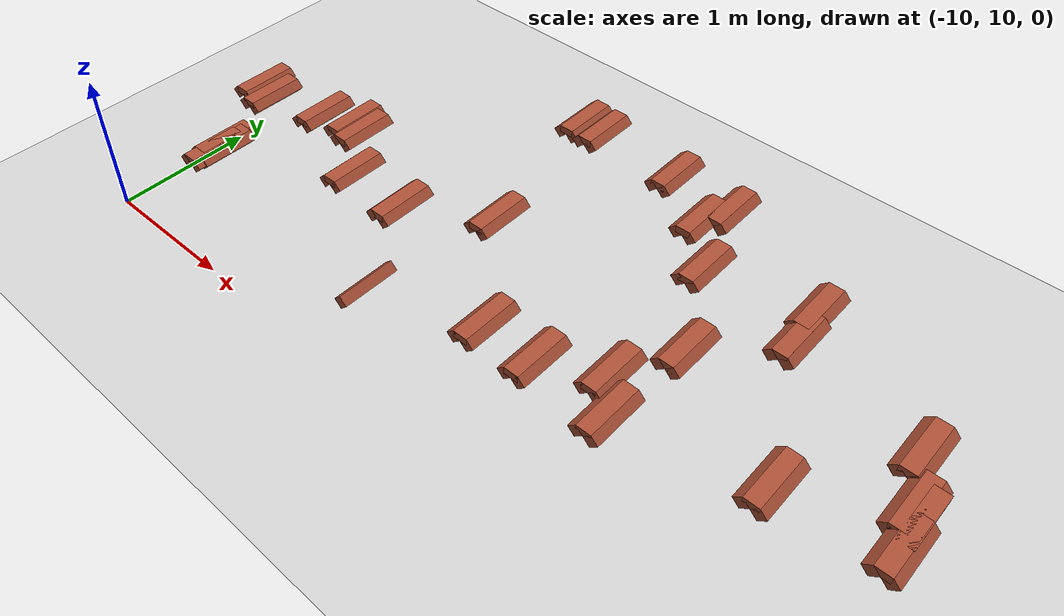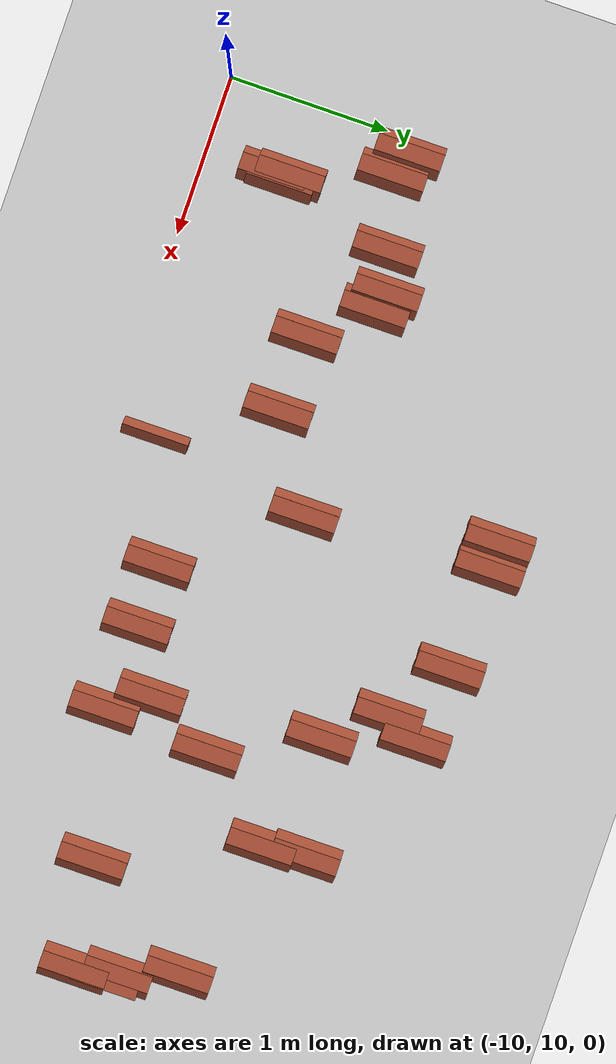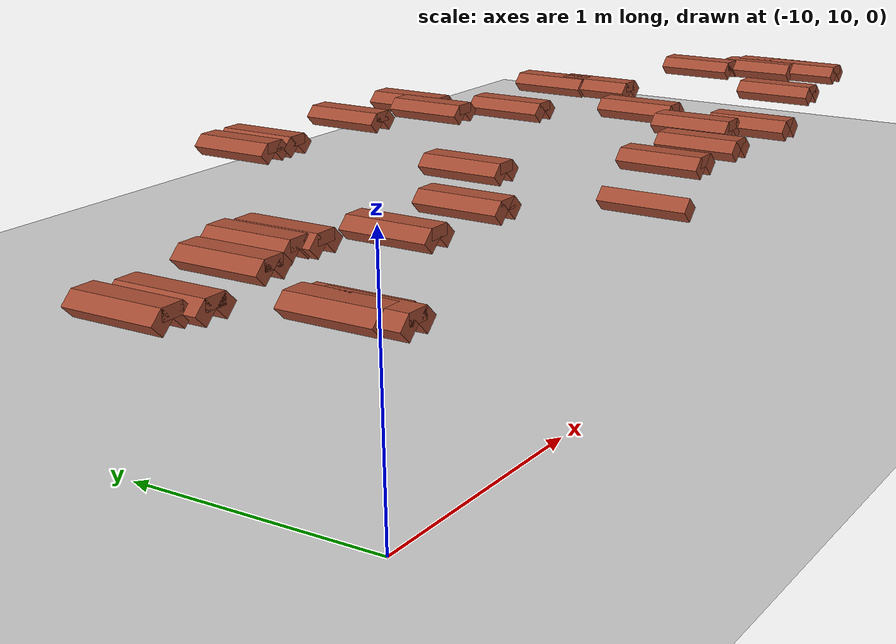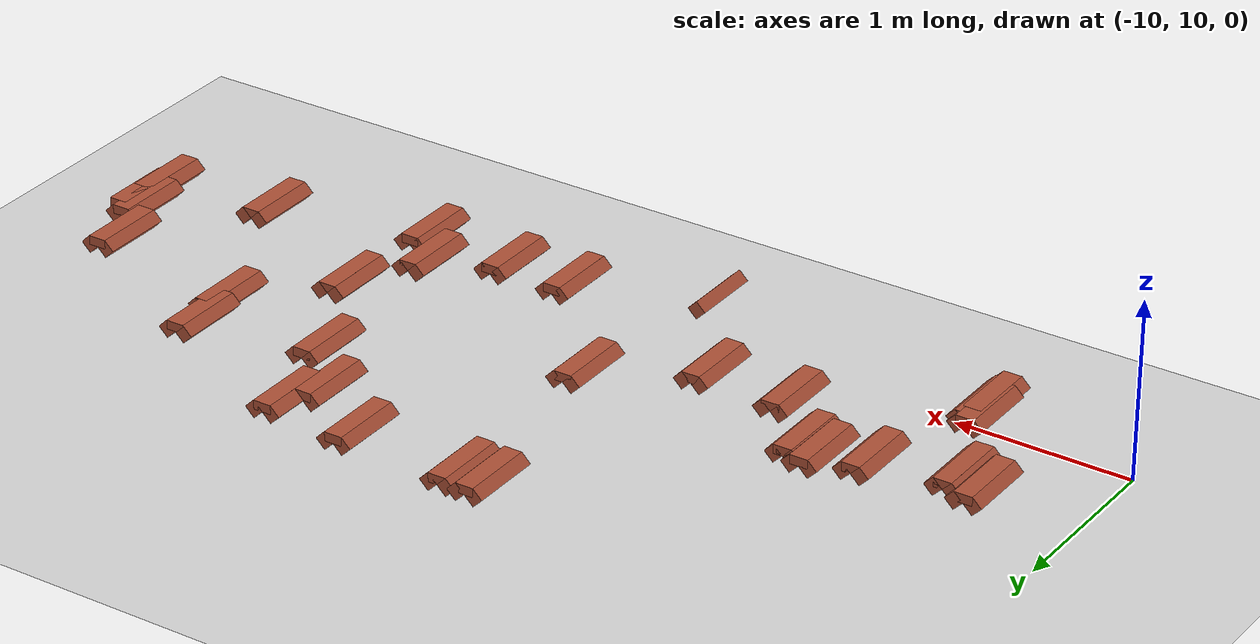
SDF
<sdf version="1.7">
 <world name="default">
  <model name="ground_plane">
   <static>1</static>
   <link name="link">
    <collision name="collision">
     <geometry><plane><normal>0 0 1</normal><size>100 100</size></plane></geometry>
     <surface><friction><ode><mu>100</mu><mu2>50</mu2></ode></friction></surface>
    </collision>
    <visual name="visual">
     <cast_shadows>0</cast_shadows>
     <geometry><plane><normal>0 0 1</normal><size>100 100</size></plane></geometry>
     <material>
      <script><uri>file://media/materials/scripts/gazebo.material</uri><name>Gazebo/Grey</name></script>
     </material>
    </visual>
   </link>
  </model>
  <model name="tumsek">
   <static>1</static>
   <pose>-5.17447 11.4027 0.5 0 -0 0</pose>
   <link name="tumsek_main_0">
    <pose>0.442808 -0.537221 0 0 -0 0</pose>
    <collision name="tumsek_Collision">
     <geometry><box><size>0.1 0.4 0.05</size></box></geometry>
     <pose>0 0 0.025 0 -0 0</pose>
    </collision>
    <visual name="tumsek_Visual">
     <pose>0 0 0.025 0 -0 0</pose>
     <geometry><box><size>0.1 0.4 0.05</size></box></geometry>
     <material>
      <script><uri>file://media/materials/scripts/gazebo.material</uri><name>Gazebo/Bricks</name></script>
      <ambient>1 1 1 1</ambient>
     </material>
     <meta><layer>0</layer></meta>
    </visual>
   </link>
   <link name="tumsek_front_0">
    <pose>0.492808 -0.537221 0 0 0.785 0</pose>
    <collision name="tumsek_Collision"><geometry><box><size>0.0707 0.4 0.0707</size></box></geometry></collision>
    <visual name="tumsek_Visual">
     <geometry><box><size>0.0707 0.4 0.0707</size></box></geometry>
     <material>
      <script><uri>file://media/materials/scripts/gazebo.material</uri><name>Gazebo/Bricks</name></script>
      <ambient>1 1 1 1</ambient>
     </material>
    </visual>
   </link>
   <link name="tumsek_back_0">
    <pose>0.392808 -0.537221 0 0 0.785 0</pose>
    <collision name="tumsek_Collision"><geometry><box><size>0.0707 0.4 0.0707</size></box></geometry></collision>
    <visual name="tumsek_Visual">
     <geometry><box><size>0.0707 0.4 0.0707</size></box></geometry>
     <material>
      <script><uri>file://media/materials/scripts/gazebo.material</uri><name>Gazebo/Bricks</name></script>
      <ambient>1 1 1 1</ambient>
     </material>
    </visual>
   </link>
   <link name="tumsek_main_1">
    <pose>-0.18536 -0.64129 0 0 -0 0</pose>
    <collision name="tumsek_Collision">
     <geometry><box><size>0.1 0.4 0.05</size></box></geometry>
     <pose>0 0 0.025 0 -0 0</pose>
    </collision>
    <visual name="tumsek_Visual">
     <pose>0 0 0.025 0 -0 0</pose>
     <geometry><box><size>0.1 0.4 0.05</size></box></geometry>
     <material>
      <script><uri>file://media/materials/scripts/gazebo.material</uri><name>Gazebo/Bricks</name></script>
      <ambient>1 1 1 1</ambient>
     </material>
     <meta><layer>0</layer></meta>
    </visual>
   </link>
   <link name="tumsek_front_1">
    <pose>-0.13536 -0.64129 0 0 0.785 0</pose>
    <collision name="tumsek_Collision"><geometry><box><size>0.0707 0.4 0.0707</size></box></geometry></collision>
    <visual name="tumsek_Visual">
     <geometry><box><size>0.0707 0.4 0.0707</size></box></geometry>
     <material>
      <script><uri>file://media/materials/scripts/gazebo.material</uri><name>Gazebo/Bricks</name></script>
      <ambient>1 1 1 1</ambient>
     </material>
    </visual>
   </link>
   <link name="tumsek_back_1">
    <pose>-0.23536 -0.64129 0 0 0.785 0</pose>
    <collision name="tumsek_Collision"><geometry><box><size>0.0707 0.4 0.0707</size></box></geometry></collision>
    <visual name="tumsek_Visual">
     <geometry><box><size>0.0707 0.4 0.0707</size></box></geometry>
     <material>
      <script><uri>file://media/materials/scripts/gazebo.material</uri><name>Gazebo/Bricks</name></script>
      <ambient>1 1 1 1</ambient>
     </material>
    </visual>
   </link>
   <link name="tumsek_main_2">
    <pose>-0.578517 0.253678 0 0 -0 0</pose>
    <collision name="tumsek_Collision">
     <geometry><box><size>0.1 0.4 0.05</size></box></geometry>
     <pose>0 0 0.025 0 -0 0</pose>
    </collision>
    <visual name="tumsek_Visual">
     <pose>0 0 0.025 0 -0 0</pose>
     <geometry><box><size>0.1 0.4 0.05</size></box></geometry>
     <material>
      <script><uri>file://media/materials/scripts/gazebo.material</uri><name>Gazebo/Bricks</name></script>
      <ambient>1 1 1 1</ambient>
     </material>
     <meta><layer>0</layer></meta>
    </visual>
   </link>
   <link name="tumsek_front_2">
    <pose>-0.528517 0.253678 0 0 0.785 0</pose>
    <collision name="tumsek_Collision"><geometry><box><size>0.0707 0.4 0.0707</size></box></geometry></collision>
    <visual name="tumsek_Visual">
     <geometry><box><size>0.0707 0.4 0.0707</size></box></geometry>
     <material>
      <script><uri>file://media/materials/scripts/gazebo.material</uri><name>Gazebo/Bricks</name></script>
      <ambient>1 1 1 1</ambient>
     </material>
    </visual>
   </link>
   <link name="tumsek_back_2">
    <pose>-0.628517 0.253678 0 0 0.785 0</pose>
    <collision name="tumsek_Collision"><geometry><box><size>0.0707 0.4 0.0707</size></box></geometry></collision>
    <visual name="tumsek_Visual">
     <geometry><box><size>0.0707 0.4 0.0707</size></box></geometry>
     <material>
      <script><uri>file://media/materials/scripts/gazebo.material</uri><name>Gazebo/Bricks</name></script>
      <ambient>1 1 1 1</ambient>
     </material>
    </visual>
   </link>
   <link name="tumsek_main_3">
    <pose>-2.98653 -0.469523 0 0 -0 0</pose>
    <collision name="tumsek_Collision">
     <geometry><box><size>0.1 0.4 0.05</size></box></geometry>
     <pose>0 0 0.025 0 -0 0</pose>
    </collision>
    <visual name="tumsek_Visual">
     <pose>0 0 0.025 0 -0 0</pose>
     <geometry><box><size>0.1 0.4 0.05</size></box></geometry>
     <material>
      <script><uri>file://media/materials/scripts/gazebo.material</uri><name>Gazebo/Bricks</name></script>
      <ambient>1 1 1 1</ambient>
     </material>
     <meta><layer>0</layer></meta>
    </visual>
   </link>
   <link name="tumsek_front_3">
    <pose>-2.93654 -0.469523 0 0 0.785 0</pose>
    <collision name="tumsek_Collision"><geometry><box><size>0.0707 0.4 0.0707</size></box></geometry></collision>
    <visual name="tumsek_Visual">
     <geometry><box><size>0.0707 0.4 0.0707</size></box></geometry>
     <material>
      <script><uri>file://media/materials/scripts/gazebo.material</uri><name>Gazebo/Bricks</name></script>
      <ambient>1 1 1 1</ambient>
     </material>
    </visual>
   </link>
   <link name="tumsek_back_3">
    <pose>-3.03654 -0.469523 0 0 0.785 0</pose>
    <collision name="tumsek_Collision"><geometry><box><size>0.0707 0.4 0.0707</size></box></geometry></collision>
    <visual name="tumsek_Visual">
     <geometry><box><size>0.0707 0.4 0.0707</size></box></geometry>
     <material>
      <script><uri>file://media/materials/scripts/gazebo.material</uri><name>Gazebo/Bricks</name></script>
      <ambient>1 1 1 1</ambient>
     </material>
    </visual>
   </link>
   <link name="tumsek_main_4">
    <pose>-0.987853 -0.219527 0 0 -0 0</pose>
    <collision name="tumsek_Collision">
     <geometry><box><size>0.1 0.4 0.05</size></box></geometry>
     <pose>0 0 0.025 0 -0 0</pose>
    </collision>
    <visual name="tumsek_Visual">
     <pose>0 0 0.025 0 -0 0</pose>
     <geometry><box><size>0.1 0.4 0.05</size></box></geometry>
     <material>
      <script><uri>file://media/materials/scripts/gazebo.material</uri><name>Gazebo/Bricks</name></script>
      <ambient>1 1 1 1</ambient>
     </material>
     <meta><layer>0</layer></meta>
    </visual>
   </link>
   <link name="tumsek_front_4">
    <pose>-0.937853 -0.219527 0 0 0.785 0</pose>
    <collision name="tumsek_Collision"><geometry><box><size>0.0707 0.4 0.0707</size></box></geometry></collision>
    <visual name="tumsek_Visual">
     <geometry><box><size>0.0707 0.4 0.0707</size></box></geometry>
     <material>
      <script><uri>file://media/materials/scripts/gazebo.material</uri><name>Gazebo/Bricks</name></script>
      <ambient>1 1 1 1</ambient>
     </material>
    </visual>
   </link>
   <link name="tumsek_back_4">
    <pose>-1.03785 -0.219527 0 0 0.785 0</pose>
    <collision name="tumsek_Collision"><geometry><box><size>0.0707 0.4 0.0707</size></box></geometry></collision>
    <visual name="tumsek_Visual">
     <geometry><box><size>0.0707 0.4 0.0707</size></box></geometry>
     <material>
      <script><uri>file://media/materials/scripts/gazebo.material</uri><name>Gazebo/Bricks</name></script>
      <ambient>1 1 1 1</ambient>
     </material>
    </visual>
   </link>
   <link name="tumsek_main_9">
    <pose>-2.67469 0.983993 0 0 -0 0</pose>
    <collision name="tumsek_Collision">
     <geometry><box><size>0.1 0.4 0.05</size></box></geometry>
     <pose>0 0 0.025 0 -0 0</pose>
    </collision>
    <visual name="tumsek_Visual">
     <pose>0 0 0.025 0 -0 0</pose>
     <geometry><box><size>0.1 0.4 0.05</size></box></geometry>
     <material>
      <script><uri>file://media/materials/scripts/gazebo.material</uri><name>Gazebo/Bricks</name></script>
      <ambient>1 1 1 1</ambient>
     </material>
     <meta><layer>0</layer></meta>
    </visual>
   </link>
   <link name="tumsek_front_9">
    <pose>-2.62469 0.983993 0 0 0.785 0</pose>
    <collision name="tumsek_Collision"><geometry><box><size>0.0707 0.4 0.0707</size></box></geometry></collision>
    <visual name="tumsek_Visual">
     <geometry><box><size>0.0707 0.4 0.0707</size></box></geometry>
     <material>
      <script><uri>file://media/materials/scripts/gazebo.material</uri><name>Gazebo/Bricks</name></script>
      <ambient>1 1 1 1</ambient>
     </material>
    </visual>
   </link>
   <link name="tumsek_back_9">
    <pose>-2.72469 0.983993 0 0 0.785 0</pose>
    <collision name="tumsek_Collision"><geometry><box><size>0.0707 0.4 0.0707</size></box></geometry></collision>
    <visual name="tumsek_Visual">
     <geometry><box><size>0.0707 0.4 0.0707</size></box></geometry>
     <material>
      <script><uri>file://media/materials/scripts/gazebo.material</uri><name>Gazebo/Bricks</name></script>
      <ambient>1 1 1 1</ambient>
     </material>
    </visual>
   </link>
   <link name="tumsek_main_12">
    <pose>-2.51657 0.980659 0 0 -0 0</pose>
    <collision name="tumsek_Collision">
     <geometry><box><size>0.1 0.4 0.05</size></box></geometry>
     <pose>0 0 0.025 0 -0 0</pose>
    </collision>
    <visual name="tumsek_Visual">
     <pose>0 0 0.025 0 -0 0</pose>
     <geometry><box><size>0.1 0.4 0.05</size></box></geometry>
     <material>
      <script><uri>file://media/materials/scripts/gazebo.material</uri><name>Gazebo/Bricks</name></script>
      <ambient>1 1 1 1</ambient>
     </material>
     <meta><layer>0</layer></meta>
    </visual>
   </link>
   <link name="tumsek_front_12">
    <pose>-2.46657 0.980659 0 0 0.785 0</pose>
    <collision name="tumsek_Collision"><geometry><box><size>0.0707 0.4 0.0707</size></box></geometry></collision>
    <visual name="tumsek_Visual">
     <geometry><box><size>0.0707 0.4 0.0707</size></box></geometry>
     <material>
      <script><uri>file://media/materials/scripts/gazebo.material</uri><name>Gazebo/Bricks</name></script>
      <ambient>1 1 1 1</ambient>
     </material>
    </visual>
   </link>
   <link name="tumsek_back_12">
    <pose>-2.56657 0.980659 0 0 0.785 0</pose>
    <collision name="tumsek_Collision"><geometry><box><size>0.0707 0.4 0.0707</size></box></geometry></collision>
    <visual name="tumsek_Visual">
     <geometry><box><size>0.0707 0.4 0.0707</size></box></geometry>
     <material>
      <script><uri>file://media/materials/scripts/gazebo.material</uri><name>Gazebo/Bricks</name></script>
      <ambient>1 1 1 1</ambient>
     </material>
    </visual>
   </link>
   <link name="tumsek_main_13">
    <pose>-3.82893 -0.09566 0 0 -0 0</pose>
    <collision name="tumsek_Collision">
     <geometry><box><size>0.1 0.4 0.05</size></box></geometry>
     <pose>0 0 0.025 0 -0 0</pose>
    </collision>
    <visual name="tumsek_Visual">
     <pose>0 0 0.025 0 -0 0</pose>
     <geometry><box><size>0.1 0.4 0.05</size></box></geometry>
     <material>
      <script><uri>file://media/materials/scripts/gazebo.material</uri><name>Gazebo/Bricks</name></script>
      <ambient>1 1 1 1</ambient>
     </material>
     <meta><layer>0</layer></meta>
    </visual>
   </link>
   <link name="tumsek_front_13">
    <pose>-3.77893 -0.09566 0 0 0.785 0</pose>
    <collision name="tumsek_Collision"><geometry><box><size>0.0707 0.4 0.0707</size></box></geometry></collision>
    <visual name="tumsek_Visual">
     <geometry><box><size>0.0707 0.4 0.0707</size></box></geometry>
     <material>
      <script><uri>file://media/materials/scripts/gazebo.material</uri><name>Gazebo/Bricks</name></script>
      <ambient>1 1 1 1</ambient>
     </material>
    </visual>
   </link>
   <link name="tumsek_back_13">
    <pose>-3.87893 -0.09566 0 0 0.785 0</pose>
    <collision name="tumsek_Collision"><geometry><box><size>0.0707 0.4 0.0707</size></box></geometry></collision>
    <visual name="tumsek_Visual">
     <geometry><box><size>0.0707 0.4 0.0707</size></box></geometry>
     <material>
      <script><uri>file://media/materials/scripts/gazebo.material</uri><name>Gazebo/Bricks</name></script>
      <ambient>1 1 1 1</ambient>
     </material>
    </visual>
   </link>
   <link name="tumsek_main_16">
    <pose>-3.71648 -0.131651 0 0 -0 0</pose>
    <collision name="tumsek_Collision">
     <geometry><box><size>0.1 0.4 0.05</size></box></geometry>
     <pose>0 0 0.025 0 -0 0</pose>
    </collision>
    <visual name="tumsek_Visual">
     <pose>0 0 0.025 0 -0 0</pose>
     <geometry><box><size>0.1 0.4 0.05</size></box></geometry>
     <material>
      <script><uri>file://media/materials/scripts/gazebo.material</uri><name>Gazebo/Bricks</name></script>
      <ambient>1 1 1 1</ambient>
     </material>
     <meta><layer>0</layer></meta>
    </visual>
   </link>
   <link name="tumsek_front_16">
    <pose>-3.66648 -0.131651 0 0 0.785 0</pose>
    <collision name="tumsek_Collision"><geometry><box><size>0.0707 0.4 0.0707</size></box></geometry></collision>
    <visual name="tumsek_Visual">
     <geometry><box><size>0.0707 0.4 0.0707</size></box></geometry>
     <material>
      <script><uri>file://media/materials/scripts/gazebo.material</uri><name>Gazebo/Bricks</name></script>
      <ambient>1 1 1 1</ambient>
     </material>
    </visual>
   </link>
   <link name="tumsek_back_16">
    <pose>-3.76648 -0.131651 0 0 0.785 0</pose>
    <collision name="tumsek_Collision"><geometry><box><size>0.0707 0.4 0.0707</size></box></geometry></collision>
    <visual name="tumsek_Visual">
     <geometry><box><size>0.0707 0.4 0.0707</size></box></geometry>
     <material>
      <script><uri>file://media/materials/scripts/gazebo.material</uri><name>Gazebo/Bricks</name></script>
      <ambient>1 1 1 1</ambient>
     </material>
    </visual>
   </link>
   <link name="tumsek_main_18">
    <pose>-1.54985 -0.834055 0 0 -0 0</pose>
    <collision name="tumsek_Collision">
     <geometry><box><size>0.1 0.4 0.05</size></box></geometry>
     <pose>0 0 0.025 0 -0 0</pose>
    </collision>
    <visual name="tumsek_Visual">
     <pose>0 0 0.025 0 -0 0</pose>
     <geometry><box><size>0.1 0.4 0.05</size></box></geometry>
     <material>
      <script><uri>file://media/materials/scripts/gazebo.material</uri><name>Gazebo/Bricks</name></script>
      <ambient>1 1 1 1</ambient>
     </material>
     <meta><layer>0</layer></meta>
    </visual>
   </link>
   <link name="tumsek_front_18">
    <pose>-1.49985 -0.834055 0 0 0.785 0</pose>
    <collision name="tumsek_Collision"><geometry><box><size>0.0707 0.4 0.0707</size></box></geometry></collision>
    <visual name="tumsek_Visual">
     <geometry><box><size>0.0707 0.4 0.0707</size></box></geometry>
     <material>
      <script><uri>file://media/materials/scripts/gazebo.material</uri><name>Gazebo/Bricks</name></script>
      <ambient>1 1 1 1</ambient>
     </material>
    </visual>
   </link>
   <link name="tumsek_back_18">
    <pose>-1.59985 -0.834055 0 0 0.785 0</pose>
    <collision name="tumsek_Collision"><geometry><box><size>0.0707 0.4 0.0707</size></box></geometry></collision>
    <visual name="tumsek_Visual">
     <geometry><box><size>0.0707 0.4 0.0707</size></box></geometry>
     <material>
      <script><uri>file://media/materials/scripts/gazebo.material</uri><name>Gazebo/Bricks</name></script>
      <ambient>1 1 1 1</ambient>
     </material>
    </visual>
   </link>
   <link name="tumsek_main_20">
    <pose>-4.06409 -0.173776 0 0 -0 0</pose>
    <collision name="tumsek_Collision">
     <geometry><box><size>0.1 0.4 0.05</size></box></geometry>
     <pose>0 0 0.025 0 -0 0</pose>
    </collision>
    <visual name="tumsek_Visual">
     <pose>0 0 0.025 0 -0 0</pose>
     <geometry><box><size>0.1 0.4 0.05</size></box></geometry>
     <material>
      <script><uri>file://media/materials/scripts/gazebo.material</uri><name>Gazebo/Bricks</name></script>
      <ambient>1 1 1 1</ambient>
     </material>
     <meta><layer>0</layer></meta>
    </visual>
   </link>
   <link name="tumsek_front_20">
    <pose>-4.01409 -0.173776 0 0 0.785 0</pose>
    <collision name="tumsek_Collision"><geometry><box><size>0.0707 0.4 0.0707</size></box></geometry></collision>
    <visual name="tumsek_Visual">
     <geometry><box><size>0.0707 0.4 0.0707</size></box></geometry>
     <material>
      <script><uri>file://media/materials/scripts/gazebo.material</uri><name>Gazebo/Bricks</name></script>
      <ambient>1 1 1 1</ambient>
     </material>
    </visual>
   </link>
   <link name="tumsek_back_20">
    <pose>-4.11409 -0.173776 0 0 0.785 0</pose>
    <collision name="tumsek_Collision"><geometry><box><size>0.0707 0.4 0.0707</size></box></geometry></collision>
    <visual name="tumsek_Visual">
     <geometry><box><size>0.0707 0.4 0.0707</size></box></geometry>
     <material>
      <script><uri>file://media/materials/scripts/gazebo.material</uri><name>Gazebo/Bricks</name></script>
      <ambient>1 1 1 1</ambient>
     </material>
    </visual>
   </link>
   <link name="tumsek_main_21">
    <pose>0.274118 0.040193 0 0 -0 0</pose>
    <collision name="tumsek_Collision">
     <geometry><box><size>0.1 0.4 0.05</size></box></geometry>
     <pose>0 0 0.025 0 -0 0</pose>
    </collision>
    <visual name="tumsek_Visual">
     <pose>0 0 0.025 0 -0 0</pose>
     <geometry><box><size>0.1 0.4 0.05</size></box></geometry>
     <material>
      <script><uri>file://media/materials/scripts/gazebo.material</uri><name>Gazebo/Bricks</name></script>
      <ambient>1 1 1 1</ambient>
     </material>
     <meta><layer>0</layer></meta>
    </visual>
   </link>
   <link name="tumsek_front_21">
    <pose>0.324118 0.040193 0 0 0.785 0</pose>
    <collision name="tumsek_Collision"><geometry><box><size>0.0707 0.4 0.0707</size></box></geometry></collision>
    <visual name="tumsek_Visual">
     <geometry><box><size>0.0707 0.4 0.0707</size></box></geometry>
     <material>
      <script><uri>file://media/materials/scripts/gazebo.material</uri><name>Gazebo/Bricks</name></script>
      <ambient>1 1 1 1</ambient>
     </material>
    </visual>
   </link>
   <link name="tumsek_back_21">
    <pose>0.224118 0.040193 0 0 0.785 0</pose>
    <collision name="tumsek_Collision"><geometry><box><size>0.0707 0.4 0.0707</size></box></geometry></collision>
    <visual name="tumsek_Visual">
     <geometry><box><size>0.0707 0.4 0.0707</size></box></geometry>
     <material>
      <script><uri>file://media/materials/scripts/gazebo.material</uri><name>Gazebo/Bricks</name></script>
      <ambient>1 1 1 1</ambient>
     </material>
    </visual>
   </link>
   <link name="tumsek_main_28">
    <pose>-1.89296 0.949633 0 0 -0 0</pose>
    <collision name="tumsek_Collision">
     <geometry><box><size>0.1 0.4 0.05</size></box></geometry>
     <pose>0 0 0.025 0 -0 0</pose>
    </collision>
    <visual name="tumsek_Visual">
     <pose>0 0 0.025 0 -0 0</pose>
     <geometry><box><size>0.1 0.4 0.05</size></box></geometry>
     <material>
      <script><uri>file://media/materials/scripts/gazebo.material</uri><name>Gazebo/Bricks</name></script>
      <ambient>1 1 1 1</ambient>
     </material>
     <meta><layer>0</layer></meta>
    </visual>
   </link>
   <link name="tumsek_front_28">
    <pose>-1.84296 0.949633 0 0 0.785 0</pose>
    <collision name="tumsek_Collision"><geometry><box><size>0.0707 0.4 0.0707</size></box></geometry></collision>
    <visual name="tumsek_Visual">
     <geometry><box><size>0.0707 0.4 0.0707</size></box></geometry>
     <material>
      <script><uri>file://media/materials/scripts/gazebo.material</uri><name>Gazebo/Bricks</name></script>
      <ambient>1 1 1 1</ambient>
     </material>
    </visual>
   </link>
   <link name="tumsek_back_28">
    <pose>-1.94296 0.949633 0 0 0.785 0</pose>
    <collision name="tumsek_Collision"><geometry><box><size>0.0707 0.4 0.0707</size></box></geometry></collision>
    <visual name="tumsek_Visual">
     <geometry><box><size>0.0707 0.4 0.0707</size></box></geometry>
     <material>
      <script><uri>file://media/materials/scripts/gazebo.material</uri><name>Gazebo/Bricks</name></script>
      <ambient>1 1 1 1</ambient>
     </material>
    </visual>
   </link>
   <link name="tumsek_main_29">
    <pose>-4.29326 -0.845961 0 0 -0 0</pose>
    <collision name="tumsek_Collision">
     <geometry><box><size>0.1 0.4 0.05</size></box></geometry>
     <pose>0 0 0.025 0 -0 0</pose>
    </collision>
    <visual name="tumsek_Visual">
     <pose>0 0 0.025 0 -0 0</pose>
     <geometry><box><size>0.1 0.4 0.05</size></box></geometry>
     <material>
      <script><uri>file://media/materials/scripts/gazebo.material</uri><name>Gazebo/Bricks</name></script>
      <ambient>1 1 1 1</ambient>
     </material>
     <meta><layer>0</layer></meta>
    </visual>
   </link>
   <link name="tumsek_front_29">
    <pose>-4.24326 -0.845961 0 0 0.785 0</pose>
    <collision name="tumsek_Collision"><geometry><box><size>0.0707 0.4 0.0707</size></box></geometry></collision>
    <visual name="tumsek_Visual">
     <geometry><box><size>0.0707 0.4 0.0707</size></box></geometry>
     <material>
      <script><uri>file://media/materials/scripts/gazebo.material</uri><name>Gazebo/Bricks</name></script>
      <ambient>1 1 1 1</ambient>
     </material>
    </visual>
   </link>
   <link name="tumsek_back_29">
    <pose>-4.34326 -0.845961 0 0 0.785 0</pose>
    <collision name="tumsek_Collision"><geometry><box><size>0.0707 0.4 0.0707</size></box></geometry></collision>
    <visual name="tumsek_Visual">
     <geometry><box><size>0.0707 0.4 0.0707</size></box></geometry>
     <material>
      <script><uri>file://media/materials/scripts/gazebo.material</uri><name>Gazebo/Bricks</name></script>
      <ambient>1 1 1 1</ambient>
     </material>
    </visual>
   </link>
   <link name="tumsek_main_30">
    <pose>-4.49216 -0.289121 0 0 -0 0</pose>
    <collision name="tumsek_Collision">
     <geometry><box><size>0.1 0.4 0.05</size></box></geometry>
     <pose>0 0 0.025 0 -0 0</pose>
    </collision>
    <visual name="tumsek_Visual">
     <pose>0 0 0.025 0 -0 0</pose>
     <geometry><box><size>0.1 0.4 0.05</size></box></geometry>
     <material>
      <script><uri>file://media/materials/scripts/gazebo.material</uri><name>Gazebo/Bricks</name></script>
      <ambient>1 1 1 1</ambient>
     </material>
     <meta><layer>0</layer></meta>
    </visual>
   </link>
   <link name="tumsek_front_30">
    <pose>-4.44216 -0.289121 0 0 0.785 0</pose>
    <collision name="tumsek_Collision"><geometry><box><size>0.0707 0.4 0.0707</size></box></geometry></collision>
    <visual name="tumsek_Visual">
     <geometry><box><size>0.0707 0.4 0.0707</size></box></geometry>
     <material>
      <script><uri>file://media/materials/scripts/gazebo.material</uri><name>Gazebo/Bricks</name></script>
      <ambient>1 1 1 1</ambient>
     </material>
    </visual>
   </link>
   <link name="tumsek_back_30">
    <pose>-4.54216 -0.289121 0 0 0.785 0</pose>
    <collision name="tumsek_Collision"><geometry><box><size>0.0707 0.4 0.0707</size></box></geometry></collision>
    <visual name="tumsek_Visual">
     <geometry><box><size>0.0707 0.4 0.0707</size></box></geometry>
     <material>
      <script><uri>file://media/materials/scripts/gazebo.material</uri><name>Gazebo/Bricks</name></script>
      <ambient>1 1 1 1</ambient>
     </material>
    </visual>
   </link>
   <link name="tumsek_main_31">
    <pose>-3.44699 -0.454906 0 0 -0 0</pose>
    <collision name="tumsek_Collision">
     <geometry><box><size>0.1 0.4 0.05</size></box></geometry>
     <pose>0 0 0.025 0 -0 0</pose>
    </collision>
    <visual name="tumsek_Visual">
     <pose>0 0 0.025 0 -0 0</pose>
     <geometry><box><size>0.1 0.4 0.05</size></box></geometry>
     <material>
      <script><uri>file://media/materials/scripts/gazebo.material</uri><name>Gazebo/Bricks</name></script>
      <ambient>1 1 1 1</ambient>
     </material>
     <meta><layer>0</layer></meta>
    </visual>
   </link>
   <link name="tumsek_front_31">
    <pose>-3.39699 -0.454906 0 0 0.785 0</pose>
    <collision name="tumsek_Collision"><geometry><box><size>0.0707 0.4 0.0707</size></box></geometry></collision>
    <visual name="tumsek_Visual">
     <geometry><box><size>0.0707 0.4 0.0707</size></box></geometry>
     <material>
      <script><uri>file://media/materials/scripts/gazebo.material</uri><name>Gazebo/Bricks</name></script>
      <ambient>1 1 1 1</ambient>
     </material>
    </visual>
   </link>
   <link name="tumsek_back_31">
    <pose>-3.49699 -0.454906 0 0 0.785 0</pose>
    <collision name="tumsek_Collision"><geometry><box><size>0.0707 0.4 0.0707</size></box></geometry></collision>
    <visual name="tumsek_Visual">
     <geometry><box><size>0.0707 0.4 0.0707</size></box></geometry>
     <material>
      <script><uri>file://media/materials/scripts/gazebo.material</uri><name>Gazebo/Bricks</name></script>
      <ambient>1 1 1 1</ambient>
     </material>
    </visual>
   </link>
   <link name="tumsek_main_32">
    <pose>-1.43355 0.898786 0 0 -0 0</pose>
    <collision name="tumsek_Collision">
     <geometry><box><size>0.1 0.4 0.05</size></box></geometry>
     <pose>0 0 0.025 0 -0 0</pose>
    </collision>
    <visual name="tumsek_Visual">
     <pose>0 0 0.025 0 -0 0</pose>
     <geometry><box><size>0.1 0.4 0.05</size></box></geometry>
     <material>
      <script><uri>file://media/materials/scripts/gazebo.material</uri><name>Gazebo/Bricks</name></script>
      <ambient>1 1 1 1</ambient>
     </material>
     <meta><layer>0</layer></meta>
    </visual>
   </link>
   <link name="tumsek_front_32">
    <pose>-1.38355 0.898786 0 0 0.785 0</pose>
    <collision name="tumsek_Collision"><geometry><box><size>0.0707 0.4 0.0707</size></box></geometry></collision>
    <visual name="tumsek_Visual">
     <geometry><box><size>0.0707 0.4 0.0707</size></box></geometry>
     <material>
      <script><uri>file://media/materials/scripts/gazebo.material</uri><name>Gazebo/Bricks</name></script>
      <ambient>1 1 1 1</ambient>
     </material>
    </visual>
   </link>
   <link name="tumsek_back_32">
    <pose>-1.48354 0.898786 0 0 0.785 0</pose>
    <collision name="tumsek_Collision"><geometry><box><size>0.0707 0.4 0.0707</size></box></geometry></collision>
    <visual name="tumsek_Visual">
     <geometry><box><size>0.0707 0.4 0.0707</size></box></geometry>
     <material>
      <script><uri>file://media/materials/scripts/gazebo.material</uri><name>Gazebo/Bricks</name></script>
      <ambient>1 1 1 1</ambient>
     </material>
    </visual>
   </link>
   <link name="tumsek_main_36">
    <pose>-4.63445 -0.23491 0 0 -0 0</pose>
    <collision name="tumsek_Collision">
     <geometry><box><size>0.1 0.4 0.05</size></box></geometry>
     <pose>0 0 0.025 0 -0 0</pose>
    </collision>
    <visual name="tumsek_Visual">
     <pose>0 0 0.025 0 -0 0</pose>
     <geometry><box><size>0.1 0.4 0.05</size></box></geometry>
     <material>
      <script><uri>file://media/materials/scripts/gazebo.material</uri><name>Gazebo/Bricks</name></script>
      <ambient>1 1 1 1</ambient>
     </material>
     <meta><layer>0</layer></meta>
    </visual>
   </link>
   <link name="tumsek_front_36">
    <pose>-4.58445 -0.23491 0 0 0.785 0</pose>
    <collision name="tumsek_Collision"><geometry><box><size>0.0707 0.4 0.0707</size></box></geometry></collision>
    <visual name="tumsek_Visual">
     <geometry><box><size>0.0707 0.4 0.0707</size></box></geometry>
     <material>
      <script><uri>file://media/materials/scripts/gazebo.material</uri><name>Gazebo/Bricks</name></script>
      <ambient>1 1 1 1</ambient>
     </material>
    </visual>
   </link>
   <link name="tumsek_back_36">
    <pose>-4.68445 -0.23491 0 0 0.785 0</pose>
    <collision name="tumsek_Collision"><geometry><box><size>0.0707 0.4 0.0707</size></box></geometry></collision>
    <visual name="tumsek_Visual">
     <geometry><box><size>0.0707 0.4 0.0707</size></box></geometry>
     <material>
      <script><uri>file://media/materials/scripts/gazebo.material</uri><name>Gazebo/Bricks</name></script>
      <ambient>1 1 1 1</ambient>
     </material>
    </visual>
   </link>
   <link name="tumsek_main_37">
    <pose>-1.18744 -0.629892 0 0 -0 0</pose>
    <collision name="tumsek_Collision">
     <geometry><box><size>0.1 0.4 0.05</size></box></geometry>
     <pose>0 0 0.025 0 -0 0</pose>
    </collision>
    <visual name="tumsek_Visual">
     <pose>0 0 0.025 0 -0 0</pose>
     <geometry><box><size>0.1 0.4 0.05</size></box></geometry>
     <material>
      <script><uri>file://media/materials/scripts/gazebo.material</uri><name>Gazebo/Bricks</name></script>
      <ambient>1 1 1 1</ambient>
     </material>
     <meta><layer>0</layer></meta>
    </visual>
   </link>
   <link name="tumsek_front_37">
    <pose>-1.13744 -0.629892 0 0 0.785 0</pose>
    <collision name="tumsek_Collision"><geometry><box><size>0.0707 0.4 0.0707</size></box></geometry></collision>
    <visual name="tumsek_Visual">
     <geometry><box><size>0.0707 0.4 0.0707</size></box></geometry>
     <material>
      <script><uri>file://media/materials/scripts/gazebo.material</uri><name>Gazebo/Bricks</name></script>
      <ambient>1 1 1 1</ambient>
     </material>
    </visual>
   </link>
   <link name="tumsek_back_37">
    <pose>-1.23744 -0.629892 0 0 0.785 0</pose>
    <collision name="tumsek_Collision"><geometry><box><size>0.0707 0.4 0.0707</size></box></geometry></collision>
    <visual name="tumsek_Visual">
     <geometry><box><size>0.0707 0.4 0.0707</size></box></geometry>
     <material>
      <script><uri>file://media/materials/scripts/gazebo.material</uri><name>Gazebo/Bricks</name></script>
      <ambient>1 1 1 1</ambient>
     </material>
    </visual>
   </link>
   <link name="tumsek_main_38">
    <pose>-1.9263 -0.833267 0 0 -0 0</pose>
    <collision name="tumsek_Collision">
     <geometry><box><size>0.1 0.4 0.05</size></box></geometry>
     <pose>0 0 0.025 0 -0 0</pose>
    </collision>
    <visual name="tumsek_Visual">
     <pose>0 0 0.025 0 -0 0</pose>
     <geometry><box><size>0.1 0.4 0.05</size></box></geometry>
     <material>
      <script><uri>file://media/materials/scripts/gazebo.material</uri><name>Gazebo/Bricks</name></script>
      <ambient>1 1 1 1</ambient>
     </material>
     <meta><layer>0</layer></meta>
    </visual>
   </link>
   <link name="tumsek_front_38">
    <pose>-1.8763 -0.833267 0 0 0.785 0</pose>
    <collision name="tumsek_Collision"><geometry><box><size>0.0707 0.4 0.0707</size></box></geometry></collision>
    <visual name="tumsek_Visual">
     <geometry><box><size>0.0707 0.4 0.0707</size></box></geometry>
     <material>
      <script><uri>file://media/materials/scripts/gazebo.material</uri><name>Gazebo/Bricks</name></script>
      <ambient>1 1 1 1</ambient>
     </material>
    </visual>
   </link>
   <link name="tumsek_back_38">
    <pose>-1.9763 -0.833267 0 0 0.785 0</pose>
    <collision name="tumsek_Collision"><geometry><box><size>0.0707 0.4 0.0707</size></box></geometry></collision>
    <visual name="tumsek_Visual">
     <geometry><box><size>0.0707 0.4 0.0707</size></box></geometry>
     <material>
      <script><uri>file://media/materials/scripts/gazebo.material</uri><name>Gazebo/Bricks</name></script>
      <ambient>1 1 1 1</ambient>
     </material>
    </visual>
   </link>
   <link name="tumsek_main_39">
    <pose>-2.46639 -0.134407 0 0 -0 0</pose>
    <collision name="tumsek_Collision">
     <geometry><box><size>0.1 0.4 0.05</size></box></geometry>
     <pose>0 0 0.025 0 -0 0</pose>
    </collision>
    <visual name="tumsek_Visual">
     <pose>0 0 0.025 0 -0 0</pose>
     <geometry><box><size>0.1 0.4 0.05</size></box></geometry>
     <material>
      <script><uri>file://media/materials/scripts/gazebo.material</uri><name>Gazebo/Bricks</name></script>
      <ambient>1 1 1 1</ambient>
     </material>
     <meta><layer>0</layer></meta>
    </visual>
   </link>
   <link name="tumsek_front_39">
    <pose>-2.41639 -0.134407 0 0 0.785 0</pose>
    <collision name="tumsek_Collision"><geometry><box><size>0.0707 0.4 0.0707</size></box></geometry></collision>
    <visual name="tumsek_Visual">
     <geometry><box><size>0.0707 0.4 0.0707</size></box></geometry>
     <material>
      <script><uri>file://media/materials/scripts/gazebo.material</uri><name>Gazebo/Bricks</name></script>
      <ambient>1 1 1 1</ambient>
     </material>
    </visual>
   </link>
   <link name="tumsek_back_39">
    <pose>-2.51639 -0.134407 0 0 0.785 0</pose>
    <collision name="tumsek_Collision"><geometry><box><size>0.0707 0.4 0.0707</size></box></geometry></collision>
    <visual name="tumsek_Visual">
     <geometry><box><size>0.0707 0.4 0.0707</size></box></geometry>
     <material>
      <script><uri>file://media/materials/scripts/gazebo.material</uri><name>Gazebo/Bricks</name></script>
      <ambient>1 1 1 1</ambient>
     </material>
    </visual>
   </link>
   <link name="tumsek_main_40">
    <pose>-1.27737 0.378186 0 0 -0 0</pose>
    <collision name="tumsek_Collision">
     <geometry><box><size>0.1 0.4 0.05</size></box></geometry>
     <pose>0 0 0.025 0 -0 0</pose>
    </collision>
    <visual name="tumsek_Visual">
     <pose>0 0 0.025 0 -0 0</pose>
     <geometry><box><size>0.1 0.4 0.05</size></box></geometry>
     <material>
      <script><uri>file://media/materials/scripts/gazebo.material</uri><name>Gazebo/Bricks</name></script>
      <ambient>1 1 1 1</ambient>
     </material>
     <meta><layer>0</layer></meta>
    </visual>
   </link>
   <link name="tumsek_front_40">
    <pose>-1.22737 0.378186 0 0 0.785 0</pose>
    <collision name="tumsek_Collision"><geometry><box><size>0.0707 0.4 0.0707</size></box></geometry></collision>
    <visual name="tumsek_Visual">
     <geometry><box><size>0.0707 0.4 0.0707</size></box></geometry>
     <material>
      <script><uri>file://media/materials/scripts/gazebo.material</uri><name>Gazebo/Bricks</name></script>
      <ambient>1 1 1 1</ambient>
     </material>
    </visual>
   </link>
   <link name="tumsek_back_40">
    <pose>-1.32737 0.378186 0 0 0.785 0</pose>
    <collision name="tumsek_Collision"><geometry><box><size>0.0707 0.4 0.0707</size></box></geometry></collision>
    <visual name="tumsek_Visual">
     <geometry><box><size>0.0707 0.4 0.0707</size></box></geometry>
     <material>
      <script><uri>file://media/materials/scripts/gazebo.material</uri><name>Gazebo/Bricks</name></script>
      <ambient>1 1 1 1</ambient>
     </material>
    </visual>
   </link>
   <link name="tumsek_main_42">
    <pose>-4.27675 -0.941317 0 0 -0 0</pose>
    <collision name="tumsek_Collision">
     <geometry><box><size>0.1 0.4 0.05</size></box></geometry>
     <pose>0 0 0.025 0 -0 0</pose>
    </collision>
    <visual name="tumsek_Visual">
     <pose>0 0 0.025 0 -0 0</pose>
     <geometry><box><size>0.1 0.4 0.05</size></box></geometry>
     <material>
      <script><uri>file://media/materials/scripts/gazebo.material</uri><name>Gazebo/Bricks</name></script>
      <ambient>1 1 1 1</ambient>
     </material>
     <meta><layer>0</layer></meta>
    </visual>
   </link>
   <link name="tumsek_front_42">
    <pose>-4.22675 -0.941317 0 0 0.785 0</pose>
    <collision name="tumsek_Collision"><geometry><box><size>0.0707 0.4 0.0707</size></box></geometry></collision>
    <visual name="tumsek_Visual">
     <geometry><box><size>0.0707 0.4 0.0707</size></box></geometry>
     <material>
      <script><uri>file://media/materials/scripts/gazebo.material</uri><name>Gazebo/Bricks</name></script>
      <ambient>1 1 1 1</ambient>
     </material>
    </visual>
   </link>
   <link name="tumsek_back_42">
    <pose>-4.32674 -0.941317 0 0 0.785 0</pose>
    <collision name="tumsek_Collision"><geometry><box><size>0.0707 0.4 0.0707</size></box></geometry></collision>
    <visual name="tumsek_Visual">
     <geometry><box><size>0.0707 0.4 0.0707</size></box></geometry>
     <material>
      <script><uri>file://media/materials/scripts/gazebo.material</uri><name>Gazebo/Bricks</name></script>
      <ambient>1 1 1 1</ambient>
     </material>
    </visual>
   </link>
   <link name="tumsek_main_45">
    <pose>-1.52624 0.703274 0 0 -0 0</pose>
    <collision name="tumsek_Collision">
     <geometry><box><size>0.1 0.4 0.05</size></box></geometry>
     <pose>0 0 0.025 0 -0 0</pose>
    </collision>
    <visual name="tumsek_Visual">
     <pose>0 0 0.025 0 -0 0</pose>
     <geometry><box><size>0.1 0.4 0.05</size></box></geometry>
     <material>
      <script><uri>file://media/materials/scripts/gazebo.material</uri><name>Gazebo/Bricks</name></script>
      <ambient>1 1 1 1</ambient>
     </material>
     <meta><layer>0</layer></meta>
    </visual>
   </link>
   <link name="tumsek_front_45">
    <pose>-1.47624 0.703274 0 0 0.785 0</pose>
    <collision name="tumsek_Collision"><geometry><box><size>0.0707 0.4 0.0707</size></box></geometry></collision>
    <visual name="tumsek_Visual">
     <geometry><box><size>0.0707 0.4 0.0707</size></box></geometry>
     <material>
      <script><uri>file://media/materials/scripts/gazebo.material</uri><name>Gazebo/Bricks</name></script>
      <ambient>1 1 1 1</ambient>
     </material>
    </visual>
   </link>
   <link name="tumsek_back_45">
    <pose>-1.57624 0.703274 0 0 0.785 0</pose>
    <collision name="tumsek_Collision"><geometry><box><size>0.0707 0.4 0.0707</size></box></geometry></collision>
    <visual name="tumsek_Visual">
     <geometry><box><size>0.0707 0.4 0.0707</size></box></geometry>
     <material>
      <script><uri>file://media/materials/scripts/gazebo.material</uri><name>Gazebo/Bricks</name></script>
      <ambient>1 1 1 1</ambient>
     </material>
    </visual>
   </link>
   <link name="tumsek_main_47">
    <pose>-4.26635 -0.88703 0 0 -0 0</pose>
    <collision name="tumsek_Collision">
     <geometry><box><size>0.1 0.4 0.05</size></box></geometry>
     <pose>0 0 0.025 0 -0 0</pose>
    </collision>
    <visual name="tumsek_Visual">
     <pose>0 0 0.025 0 -0 0</pose>
     <geometry><box><size>0.1 0.4 0.05</size></box></geometry>
     <material>
      <script><uri>file://media/materials/scripts/gazebo.material</uri><name>Gazebo/Bricks</name></script>
      <ambient>1 1 1 1</ambient>
     </material>
     <meta><layer>0</layer></meta>
    </visual>
   </link>
   <link name="tumsek_front_47">
    <pose>-4.21635 -0.88703 0 0 0.785 0</pose>
    <collision name="tumsek_Collision"><geometry><box><size>0.0707 0.4 0.0707</size></box></geometry></collision>
    <visual name="tumsek_Visual">
     <geometry><box><size>0.0707 0.4 0.0707</size></box></geometry>
     <material>
      <script><uri>file://media/materials/scripts/gazebo.material</uri><name>Gazebo/Bricks</name></script>
      <ambient>1 1 1 1</ambient>
     </material>
    </visual>
   </link>
   <link name="tumsek_back_47">
    <pose>-4.31635 -0.88703 0 0 0.785 0</pose>
    <collision name="tumsek_Collision"><geometry><box><size>0.0707 0.4 0.0707</size></box></geometry></collision>
    <visual name="tumsek_Visual">
     <geometry><box><size>0.0707 0.4 0.0707</size></box></geometry>
     <material>
      <script><uri>file://media/materials/scripts/gazebo.material</uri><name>Gazebo/Bricks</name></script>
      <ambient>1 1 1 1</ambient>
     </material>
    </visual>
   </link>
   <link name="tumsek_main_51">
    <pose>-1.03339 -0.862511 0 0 -0 0</pose>
    <collision name="tumsek_Collision">
     <geometry><box><size>0.1 0.4 0.05</size></box></geometry>
     <pose>0 0 0.025 0 -0 0</pose>
    </collision>
    <visual name="tumsek_Visual">
     <pose>0 0 0.025 0 -0 0</pose>
     <geometry><box><size>0.1 0.4 0.05</size></box></geometry>
     <material>
      <script><uri>file://media/materials/scripts/gazebo.material</uri><name>Gazebo/Bricks</name></script>
      <ambient>1 1 1 1</ambient>
     </material>
     <meta><layer>0</layer></meta>
    </visual>
   </link>
   <link name="tumsek_front_51">
    <pose>-0.983386 -0.862511 0 0 0.785 0</pose>
    <collision name="tumsek_Collision"><geometry><box><size>0.0707 0.4 0.0707</size></box></geometry></collision>
    <visual name="tumsek_Visual">
     <geometry><box><size>0.0707 0.4 0.0707</size></box></geometry>
     <material>
      <script><uri>file://media/materials/scripts/gazebo.material</uri><name>Gazebo/Bricks</name></script>
      <ambient>1 1 1 1</ambient>
     </material>
    </visual>
   </link>
   <link name="tumsek_back_51">
    <pose>-1.08339 -0.862511 0 0 0.785 0</pose>
    <collision name="tumsek_Collision"><geometry><box><size>0.0707 0.4 0.0707</size></box></geometry></collision>
    <visual name="tumsek_Visual">
     <geometry><box><size>0.0707 0.4 0.0707</size></box></geometry>
     <material>
      <script><uri>file://media/materials/scripts/gazebo.material</uri><name>Gazebo/Bricks</name></script>
      <ambient>1 1 1 1</ambient>
     </material>
    </visual>
   </link>
   <link name="tumsek_back_53">
    <pose>-2.6215 -1.09309 0 0 0.785 0</pose>
    <collision name="tumsek_Collision"><geometry><box><size>0.0707 0.4 0.0707</size></box></geometry></collision>
    <visual name="tumsek_Visual">
     <geometry><box><size>0.0707 0.4 0.0707</size></box></geometry>
     <material>
      <script><uri>file://media/materials/scripts/gazebo.material</uri><name>Gazebo/Bricks</name></script>
      <ambient>1 1 1 1</ambient>
     </material>
    </visual>
   </link>
   <link name="tumsek_main_54">
    <pose>-0.602211 0.514307 0 0 -0 0</pose>
    <collision name="tumsek_Collision">
     <geometry><box><size>0.1 0.4 0.05</size></box></geometry>
     <pose>0 0 0.025 0 -0 0</pose>
    </collision>
    <visual name="tumsek_Visual">
     <pose>0 0 0.025 0 -0 0</pose>
     <geometry><box><size>0.1 0.4 0.05</size></box></geometry>
     <material>
      <script><uri>file://media/materials/scripts/gazebo.material</uri><name>Gazebo/Bricks</name></script>
      <ambient>1 1 1 1</ambient>
     </material>
     <meta><layer>0</layer></meta>
    </visual>
   </link>
   <link name="tumsek_front_54">
    <pose>-0.552211 0.514307 0 0 0.785 0</pose>
    <collision name="tumsek_Collision"><geometry><box><size>0.0707 0.4 0.0707</size></box></geometry></collision>
    <visual name="tumsek_Visual">
     <geometry><box><size>0.0707 0.4 0.0707</size></box></geometry>
     <material>
      <script><uri>file://media/materials/scripts/gazebo.material</uri><name>Gazebo/Bricks</name></script>
      <ambient>1 1 1 1</ambient>
     </material>
    </visual>
   </link>
   <link name="tumsek_back_54">
    <pose>-0.652211 0.514307 0 0 0.785 0</pose>
    <collision name="tumsek_Collision"><geometry><box><size>0.0707 0.4 0.0707</size></box></geometry></collision>
    <visual name="tumsek_Visual">
     <geometry><box><size>0.0707 0.4 0.0707</size></box></geometry>
     <material>
      <script><uri>file://media/materials/scripts/gazebo.material</uri><name>Gazebo/Bricks</name></script>
      <ambient>1 1 1 1</ambient>
     </material>
    </visual>
   </link>
   <link name="tumsek_main_57">
    <pose>0.387212 -0.290584 0 0 -0 0</pose>
    <collision name="tumsek_Collision">
     <geometry><box><size>0.1 0.4 0.05</size></box></geometry>
     <pose>0 0 0.025 0 -0 0</pose>
    </collision>
    <visual name="tumsek_Visual">
     <pose>0 0 0.025 0 -0 0</pose>
     <geometry><box><size>0.1 0.4 0.05</size></box></geometry>
     <material>
      <script><uri>file://media/materials/scripts/gazebo.material</uri><name>Gazebo/Bricks</name></script>
      <ambient>1 1 1 1</ambient>
     </material>
     <meta><layer>0</layer></meta>
    </visual>
   </link>
   <link name="tumsek_front_57">
    <pose>0.437212 -0.290584 0 0 0.785 0</pose>
    <collision name="tumsek_Collision"><geometry><box><size>0.0707 0.4 0.0707</size></box></geometry></collision>
    <visual name="tumsek_Visual">
     <geometry><box><size>0.0707 0.4 0.0707</size></box></geometry>
     <material>
      <script><uri>file://media/materials/scripts/gazebo.material</uri><name>Gazebo/Bricks</name></script>
      <ambient>1 1 1 1</ambient>
     </material>
    </visual>
   </link>
   <link name="tumsek_back_57">
    <pose>0.337212 -0.290584 0 0 0.785 0</pose>
    <collision name="tumsek_Collision"><geometry><box><size>0.0707 0.4 0.0707</size></box></geometry></collision>
    <visual name="tumsek_Visual">
     <geometry><box><size>0.0707 0.4 0.0707</size></box></geometry>
     <material>
      <script><uri>file://media/materials/scripts/gazebo.material</uri><name>Gazebo/Bricks</name></script>
      <ambient>1 1 1 1</ambient>
     </material>
    </visual>
   </link>
   <link name="tumsek_main_59">
    <pose>0.448721 -0.345806 0 0 -0 0</pose>
    <collision name="tumsek_Collision">
     <geometry><box><size>0.1 0.4 0.05</size></box></geometry>
     <pose>0 0 0.025 0 -0 0</pose>
    </collision>
    <visual name="tumsek_Visual">
     <pose>0 0 0.025 0 -0 0</pose>
     <geometry><box><size>0.1 0.4 0.05</size></box></geometry>
     <material>
      <script><uri>file://media/materials/scripts/gazebo.material</uri><name>Gazebo/Bricks</name></script>
      <ambient>1 1 1 1</ambient>
     </material>
     <meta><layer>0</layer></meta>
    </visual>
   </link>
   <link name="tumsek_back_59">
    <pose>0.398721 -0.345806 0 0 0.785 0</pose>
    <collision name="tumsek_Collision"><geometry><box><size>0.0707 0.4 0.0707</size></box></geometry></collision>
    <visual name="tumsek_Visual">
     <geometry><box><size>0.0707 0.4 0.0707</size></box></geometry>
     <material>
      <script><uri>file://media/materials/scripts/gazebo.material</uri><name>Gazebo/Bricks</name></script>
      <ambient>1 1 1 1</ambient>
     </material>
    </visual>
   </link>
  </model>
 </world>
</sdf>
